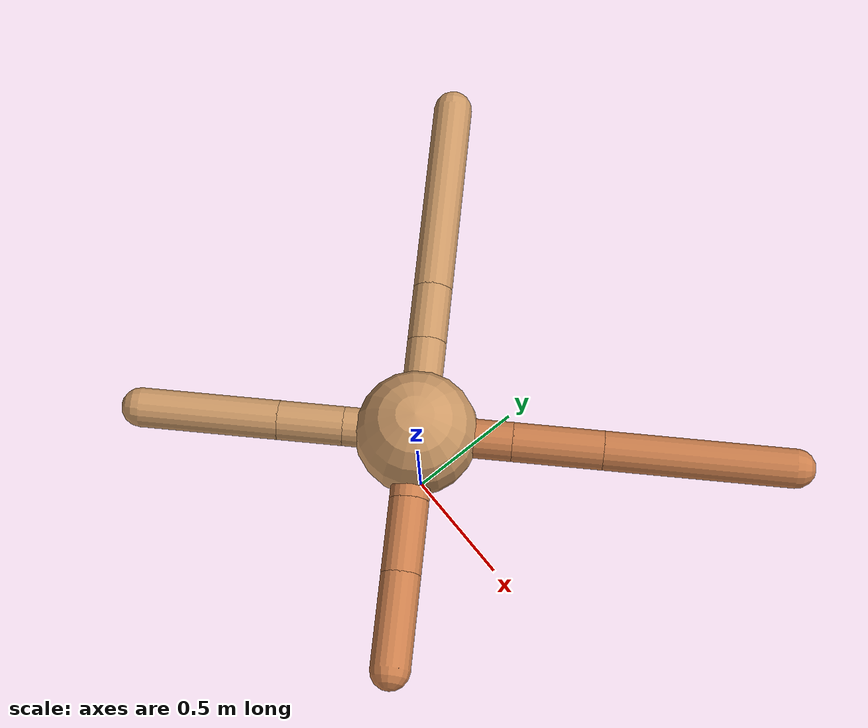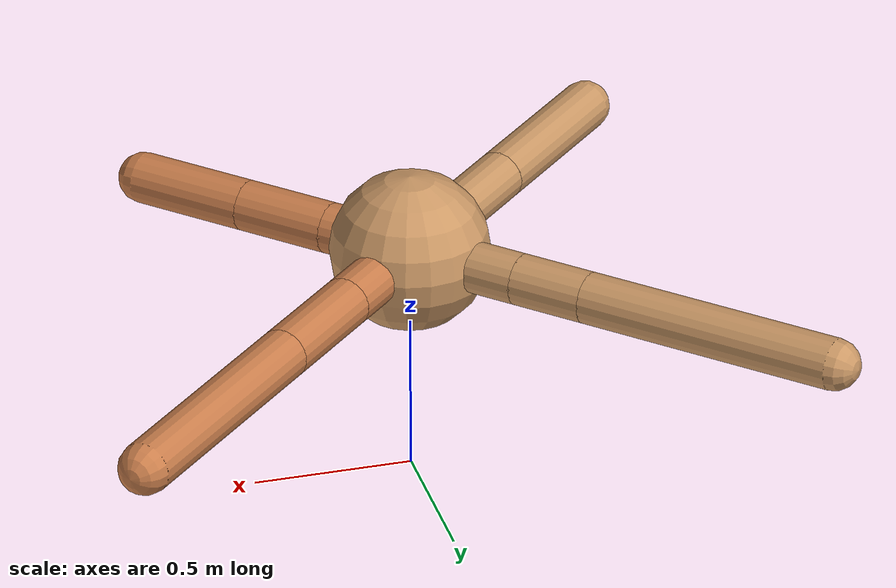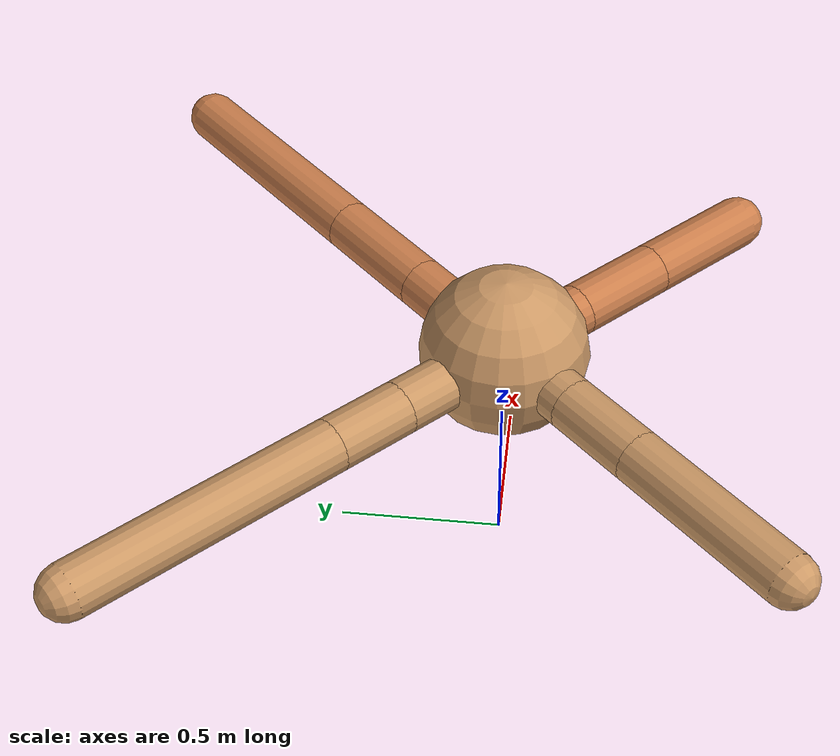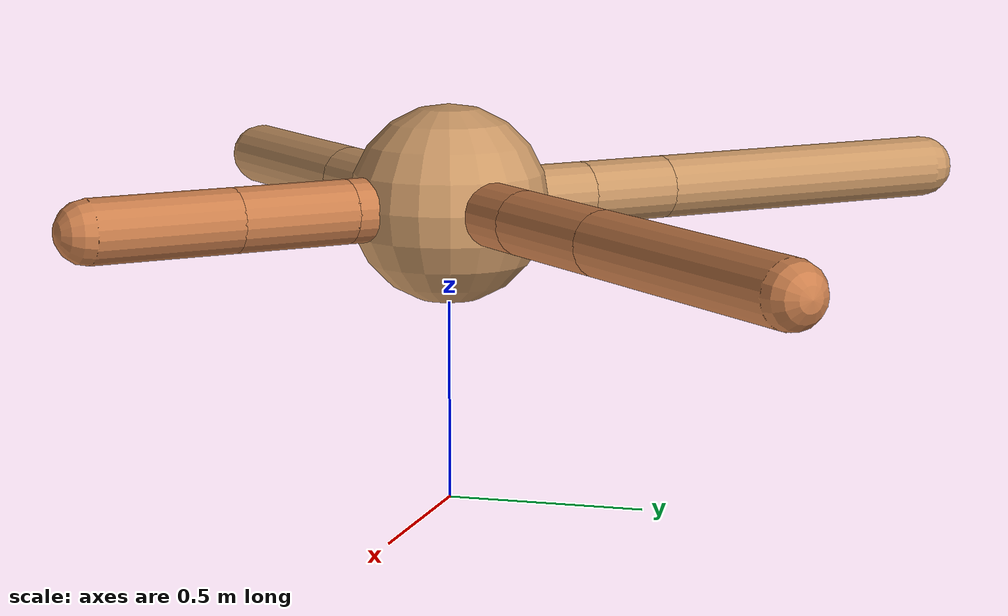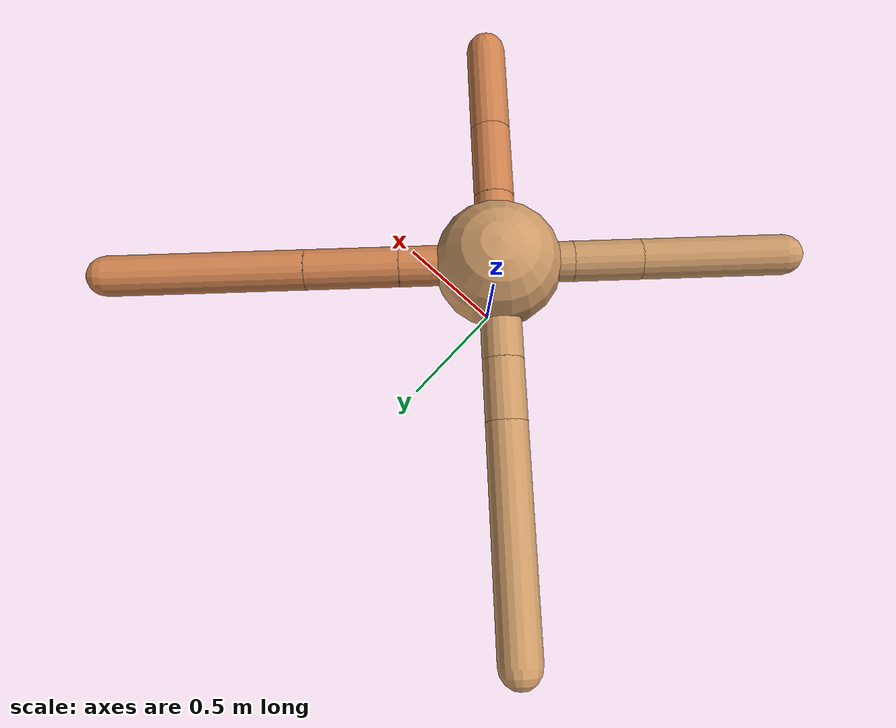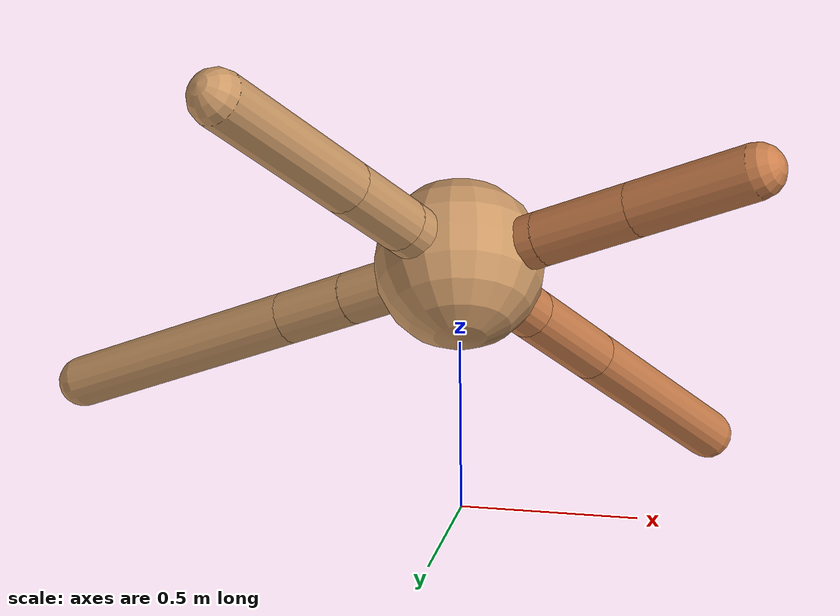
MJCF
<mujoco model="ant">
  <compiler angle="degree" coordinate="local" inertiafromgeom="true" />
  <option integrator="RK4" timestep="0.01" />
  <custom>
    <numeric data="0.0 0.0 0.55 1.0 0.0 0.0 0.0 0.0 1.0 0.0 -1.0 0.0 -1.0 0.0 1.0" name="init_qpos" />
  </custom>
  <default>
    <joint armature="1" damping="1" limited="true" />
    <geom conaffinity="0" condim="3" density="5.0" friction="1.5 0.1 0.1" margin="0.01" rgba="0.8 0.6 0.4 1" />
  </default>
  <worldbody>
    <body name="torso" pos="0 0 0.75">
      <geom name="torso_geom" pos="0 0 0" size="0.25" type="sphere" />

      <body name="front_left_leg" pos="0 0 0">
        <geom fromto="0.0 0.0 0.0 0.2720835877922571 0.2720835877922571 0.0" name="aux_1_geom" size="0.08" type="capsule" rgba=".8 .5 .3 1" />
        <body name="aux_1" pos="0.2720835877922571 0.2720835877922571 0.0">
          <joint axis="0 0 1" name="hip_1" pos="0.0 0.0 0.0" range="-40 40" type="hinge" />
          <geom fromto="0.0 0.0 0.0 0.2578784117710948 0.2578784117710948 0.0" name="left_leg_geom" size="0.08" type="capsule" rgba=".8 .5 .3 1" />
          <body pos="0.2578784117710948 0.2578784117710948 0.0" name="front_left_foot">
            <joint axis="-1 1 0" name="ankle_1" pos="0.0 0.0 0.0" range="30 100" type="hinge" />
            <geom fromto="0.0 0.0 0.0 0.5438161847606017 0.5438161847606017 0.0" name="left_ankle_geom" size="0.08" type="capsule" rgba=".8 .5 .3 1" />
          </body>
        </body>
      </body>
      <body name="front_right_leg" pos="0 0 0">
        <geom fromto="0.0 0.0 0.0 -0.2727216017876697 0.2727216017876697 0.0" name="aux_2_geom" size="0.08" type="capsule" />
        <body name="aux_2" pos="-0.2727216017876697 0.2727216017876697 0.0">
          <joint axis="0 0 1" name="hip_2" pos="0.0 0.0 0.0" range="-40 40" type="hinge" />
          <geom fromto="0.0 0.0 0.0 -0.1661677575623724 0.1661677575623724 0.0" name="right_leg_geom" size="0.08" type="capsule" />
          <body pos="-0.1661677575623724 0.1661677575623724 0.0" name="front_right_foot">
            <joint axis="1 1 0" name="ankle_2" pos="0.0 0.0 0.0" range="-100 -30" type="hinge" />
            <geom fromto="0.0 0.0 0.0 -0.5855682563990541 0.5855682563990541 0.0" name="right_ankle_geom" size="0.08" type="capsule" />
          </body>
        </body>
      </body>
      <body name="left_back_leg" pos="0 0 0">
        <geom fromto="0.0 0.0 0.0 -0.20721484541492075 -0.20721484541492075 0.0" name="aux_3_geom" size="0.08" type="capsule" />
        <body name="aux_3" pos="-0.20721484541492075 -0.20721484541492075 0.0">
          <joint axis="0 0 1" name="hip_3" pos="0.0 0.0 0.0" range="-40 40" type="hinge" />
          <geom fromto="0.0 0.0 0.0 -0.18625549902706864 -0.18625549902706864 0.0" name="back_leg_geom" size="0.08" type="capsule" />
          <body pos="-0.18625549902706864 -0.18625549902706864 0.0" name="left_back_foot">
            <joint axis="-1 1 0" name="ankle_3" pos="0.0 0.0 0.0" range="-100 -30" type="hinge" />
            <geom fromto="0.0 0.0 0.0 -0.3941070398293906 -0.3941070398293906 0.0" name="third_ankle_geom" size="0.08" type="capsule" />
          </body>
        </body>
      </body>
      <body name="right_back_leg" pos="0 0 0">
        <geom fromto="0.0 0.0 0.0 0.2 -0.2 0.0" name="aux_4_geom" size="0.08" type="capsule" rgba=".8 .5 .3 1" />
        <body name="aux_4" pos="0.2 -0.2 0.0">
          <joint axis="0 0 1" name="hip_4" pos="0.0 0.0 0.0" range="-40 40" type="hinge" />
          <geom fromto="0.0 0.0 0.0 0.21279910355507262 -0.21279910355507262 0.0" name="rightback_leg_geom" size="0.08" type="capsule" rgba=".8 .5 .3 1" />
          <body pos="0.21279910355507262 -0.21279910355507262 0.0" name="right_back_foot">
            <joint axis="1 1 0" name="ankle_4" pos="0.0 0.0 0.0" range="30 100" type="hinge" />
            <geom fromto="0.0 0.0 0.0 0.26620730965972056 -0.26620730965972056 0.0" name="fourth_ankle_geom" size="0.08" type="capsule" rgba=".8 .5 .3 1" />
          </body>
        </body>
      </body>
    </body>
  </worldbody>
  <actuator>
    <motor ctrllimited="true" ctrlrange="-1.0 1.0" joint="hip_4" gear="150" />
    <motor ctrllimited="true" ctrlrange="-1.0 1.0" joint="ankle_4" gear="150" />
    <motor ctrllimited="true" ctrlrange="-1.0 1.0" joint="hip_1" gear="150" />
    <motor ctrllimited="true" ctrlrange="-1.0 1.0" joint="ankle_1" gear="150" />
    <motor ctrllimited="true" ctrlrange="-1.0 1.0" joint="hip_2" gear="150" />
    <motor ctrllimited="true" ctrlrange="-1.0 1.0" joint="ankle_2" gear="150" />
    <motor ctrllimited="true" ctrlrange="-1.0 1.0" joint="hip_3" gear="150" />
    <motor ctrllimited="true" ctrlrange="-1.0 1.0" joint="ankle_3" gear="150" />
  </actuator>
</mujoco>
